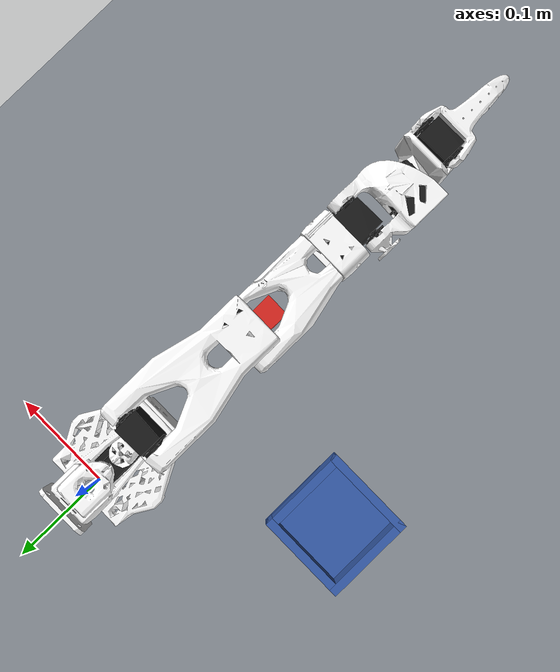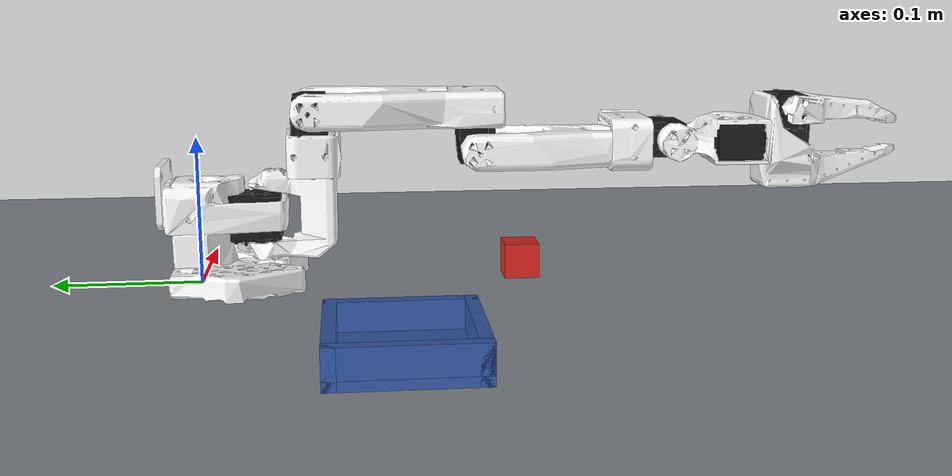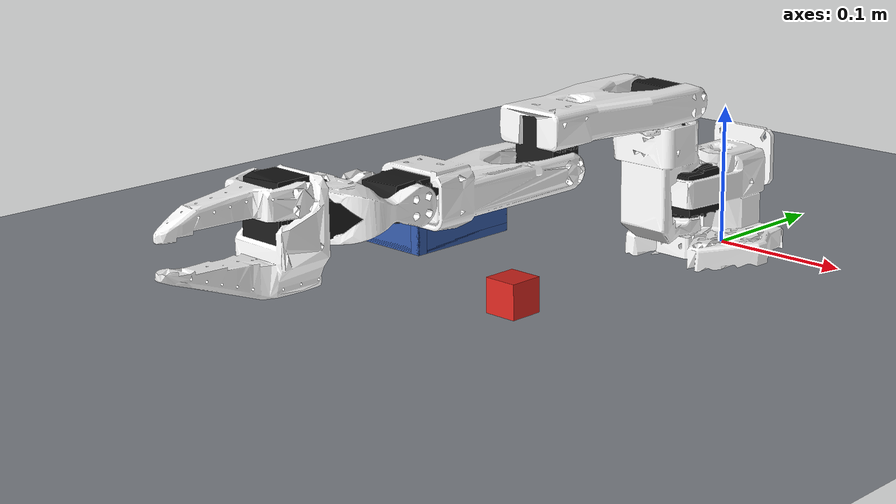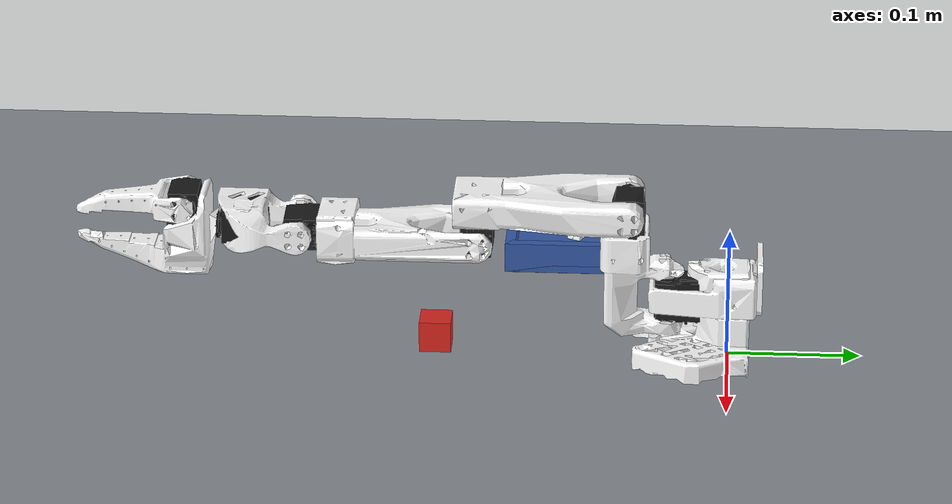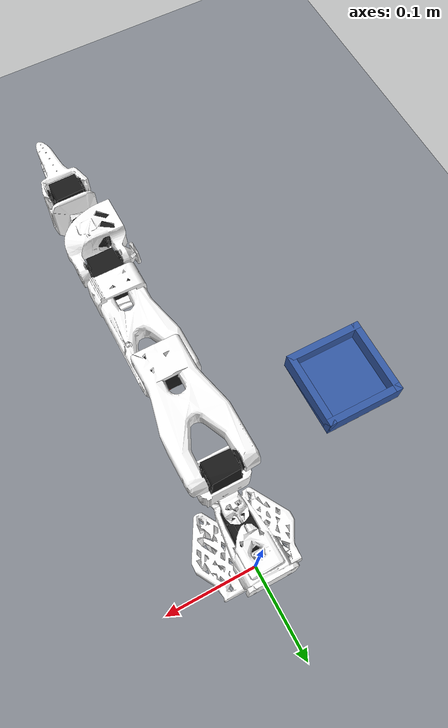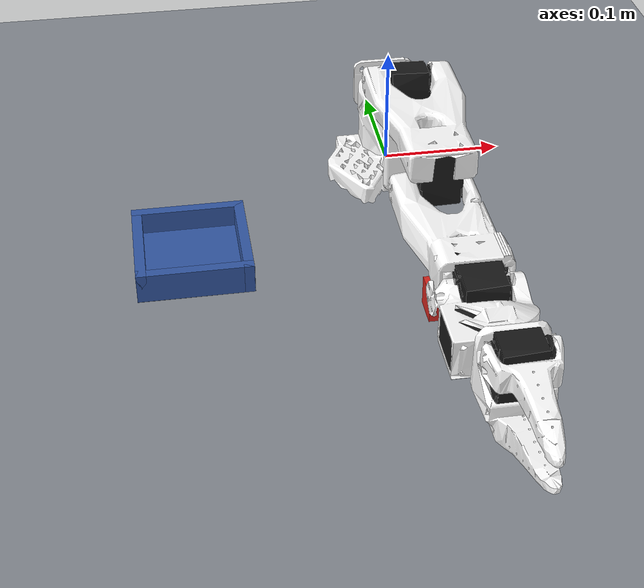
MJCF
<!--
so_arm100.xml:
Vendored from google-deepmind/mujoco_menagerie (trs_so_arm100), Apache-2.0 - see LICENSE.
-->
<mujoco model="sim2cell_pickplace">
  <!-- SO-ARM100 pick-and-place work-cell: arm + block + tray on a worktable.
       Lives next to so_arm100.xml (Menagerie convention) so mesh paths resolve. -->
  <include file="so_arm100.xml"/>

  <visual>
    <headlight diffuse="0.6 0.6 0.6" ambient="0.35 0.35 0.35" specular="0.1 0.1 0.1"/>
    <global offwidth="640" offheight="480"/>
  </visual>

  <asset>
    <texture type="2d" name="worktable" builtin="checker" mark="edge" rgb1="0.55 0.57 0.60" rgb2="0.50 0.52 0.55"
      markrgb="0.4 0.4 0.42" width="300" height="300"/>
    <material name="worktable" texture="worktable" texuniform="true" texrepeat="8 8" reflectance="0.05"/>
    <material name="block_red" rgba="0.85 0.15 0.12 1"/>
    <material name="tray_blue" rgba="0.20 0.35 0.65 1"/>
  </asset>

  <worldbody>
    <light name="toplight" pos="0.3 -0.3 1.2" dir="-0.25 0.25 -1" directional="true" diffuse="0.7 0.7 0.7"/>
    <geom name="floor" size="1 1 0.05" type="plane" material="worktable" friction="0.8 0.005 0.0001"/>

    <!-- Pick object: small cube (freejoint) -->
    <body name="block" pos="0.0 -0.22 0.012">
      <freejoint name="block_free"/>
      <geom name="block_geom" type="box" size="0.012 0.012 0.012" material="block_red" mass="0.02"
        friction="1.2 0.005 0.0001" solimp="2 1 0.01" solref="0.01 1"/>
    </body>

    <!-- Place target: shallow tray -->
    <body name="tray" pos="-0.18 -0.13 0">
      <geom name="tray_floor" type="box" size="0.045 0.045 0.003" pos="0 0 0.003" material="tray_blue"/>
      <geom name="tray_wall_n" type="box" size="0.045 0.004 0.012" pos="0 0.041 0.012" material="tray_blue"/>
      <geom name="tray_wall_s" type="box" size="0.045 0.004 0.012" pos="0 -0.041 0.012" material="tray_blue"/>
      <geom name="tray_wall_e" type="box" size="0.004 0.045 0.012" pos="0.041 0 0.012" material="tray_blue"/>
      <geom name="tray_wall_w" type="box" size="0.004 0.045 0.012" pos="-0.041 0 0.012" material="tray_blue"/>
    </body>

    <!-- Fixed observation camera (front of workspace) -->
    <camera name="front" pos="0.0 -0.55 0.35" xyaxes="1 0 0 0 0.55 0.85" fovy="52"/>
    <!-- Diagnostic overview camera -->
    <camera name="overview" pos="0.6 -0.6 0.5" xyaxes="0.7 0.7 0 -0.4 0.4 0.85" fovy="55"/>
  </worldbody>
</mujoco>

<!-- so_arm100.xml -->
<mujoco model="so_arm100">
  <compiler angle="radian" meshdir="assets/"/>

  <option cone="elliptic" impratio="10"/>

  <asset>
    <material name="white" rgba="1 1 1 1"/>
    <material name="black" rgba="0.1 0.1 0.1 1"/>

    <mesh name="Base" file="Base.stl"/>
    <mesh name="Base_Motor" file="Base_Motor.stl"/>
    <mesh name="Rotation_Pitch" file="Rotation_Pitch.stl"/>
    <mesh name="Rotation_Pitch_Motor" file="Rotation_Pitch_Motor.stl"/>
    <mesh name="Upper_Arm" file="Upper_Arm.stl"/>
    <mesh name="Upper_Arm_Motor" file="Upper_Arm_Motor.stl"/>
    <mesh name="Lower_Arm" file="Lower_Arm.stl"/>
    <mesh name="Lower_Arm_Motor" file="Lower_Arm_Motor.stl"/>
    <mesh name="Wrist_Pitch_Roll" file="Wrist_Pitch_Roll.stl"/>
    <mesh name="Wrist_Pitch_Roll_Motor" file="Wrist_Pitch_Roll_Motor.stl"/>
    <mesh name="Fixed_Jaw" file="Fixed_Jaw.stl"/>
    <mesh name="Fixed_Jaw_Motor" file="Fixed_Jaw_Motor.stl"/>
    <mesh name="Fixed_Jaw_Collision_1" file="Fixed_Jaw_Collision_1.stl"/>
    <mesh name="Fixed_Jaw_Collision_2" file="Fixed_Jaw_Collision_2.stl"/>
    <mesh name="Moving_Jaw" file="Moving_Jaw.stl"/>
    <mesh name="Moving_Jaw_Collision_1" file="Moving_Jaw_Collision_1.stl"/>
    <mesh name="Moving_Jaw_Collision_2" file="Moving_Jaw_Collision_2.stl"/>
    <mesh name="Moving_Jaw_Collision_3" file="Moving_Jaw_Collision_3.stl"/>
  </asset>

  <default>
    <default class="so_arm100">
      <joint frictionloss="0.1" armature="0.1"/>
      <position kp="50" dampratio="1" forcerange="-3.5 3.5"/>
      <default class="Rotation">
        <joint axis="0 1 0" range="-1.92 1.92"/>
      </default>
      <default class="Pitch">
        <joint axis="1 0 0" range="-3.32 0.174"/>
      </default>
      <default class="Elbow">
        <joint axis="1 0 0" range="-0.174 3.14"/>
      </default>
      <default class="Wrist_Pitch">
        <joint axis="1 0 0" range="-1.66 1.66"/>
      </default>
      <default class="Wrist_Roll">
        <joint axis="0 1 0" range="-2.79 2.79"/>
      </default>
      <default class="Jaw">
        <joint axis="0 0 1" range="-0.174 1.75"/>
      </default>
      <default class="visual">
        <geom type="mesh" contype="0" conaffinity="0" density="0" group="2" material="white"/>
        <default class="motor_visual">
          <geom material="black"/>
        </default>
      </default>
      <default class="collision">
        <geom group="3" type="mesh" material="white"/>
        <default class="finger_collision">
          <geom type="box" solimp="2 1 0.01" solref="0.01 1" friction="1 0.005 0.0001"/>
        </default>
      </default>
    </default>
  </default>

  <worldbody>
    <body name="Base" childclass="so_arm100">
      <geom type="mesh" mesh="Base" class="visual"/>
      <geom type="mesh" mesh="Base_Motor" class="motor_visual"/>
      <geom type="mesh" mesh="Base" class="collision"/>
      <body name="Rotation_Pitch" pos="0 -0.0452 0.0165" quat="0.707105 0.707108 0 0">
        <inertial pos="-9.07886e-05 0.0590972 0.031089" quat="0.363978 0.441169 -0.623108 0.533504" mass="0.119226"
          diaginertia="5.94278e-05 5.89975e-05 3.13712e-05"/>
        <joint name="Rotation" class="Rotation"/>
        <geom type="mesh" mesh="Rotation_Pitch" class="visual"/>
        <geom type="mesh" mesh="Rotation_Pitch_Motor" class="motor_visual"/>
        <geom type="mesh" mesh="Rotation_Pitch" class="collision"/>
        <body name="Upper_Arm" pos="0 0.1025 0.0306" euler="1.57079 0 0">
          <inertial pos="-1.72052e-05 0.0701802 0.00310545" quat="0.50104 0.498994 -0.493562 0.50632" mass="0.162409"
            diaginertia="0.000213312 0.000167164 7.01522e-05"/>
          <joint name="Pitch" class="Pitch"/>
          <geom type="mesh" mesh="Upper_Arm" class="visual"/>
          <geom type="mesh" mesh="Upper_Arm_Motor" class="motor_visual"/>
          <geom type="mesh" mesh="Upper_Arm" class="collision"/>
          <body name="Lower_Arm" pos="0 0.11257 0.028" euler="-1.57079 0 0">
            <inertial pos="-0.00339604 0.00137796 0.0768007" quat="0.701995 0.0787996 0.0645626 0.704859"
              mass="0.147968" diaginertia="0.000138803 0.000107748 4.84242e-05"/>
            <joint name="Elbow" class="Elbow"/>
            <geom type="mesh" mesh="Lower_Arm" class="visual"/>
            <geom type="mesh" mesh="Lower_Arm_Motor" class="motor_visual"/>
            <geom type="mesh" mesh="Lower_Arm" class="collision"/>
            <body name="Wrist_Pitch_Roll" pos="0 0.0052 0.1349" euler="-1.57079 0 0">
              <inertial pos="-0.00852653 -0.0352279 -2.34622e-05" quat="-0.0522806 0.705235 0.0549524 0.704905"
                mass="0.0661321" diaginertia="3.45403e-05 2.39041e-05 1.94704e-05"/>
              <joint name="Wrist_Pitch" class="Wrist_Pitch"/>
              <geom type="mesh" mesh="Wrist_Pitch_Roll" class="visual"/>
              <geom type="mesh" mesh="Wrist_Pitch_Roll_Motor" class="motor_visual"/>
              <geom type="mesh" mesh="Wrist_Pitch_Roll" class="collision"/>
              <body name="Fixed_Jaw" pos="0 -0.0601 0" euler="0 1.57079 0">
                <inertial pos="0.00552377 -0.0280167 0.000483583" quat="0.41836 0.620891 -0.350644 0.562599"
                  mass="0.0929859" diaginertia="5.03136e-05 4.64098e-05 2.72961e-05"/>
                <joint name="Wrist_Roll" class="Wrist_Roll"/>
                <geom type="mesh" mesh="Fixed_Jaw" class="visual"/>
                <geom type="mesh" mesh="Fixed_Jaw_Motor" class="motor_visual"/>
                <geom type="mesh" mesh="Fixed_Jaw_Collision_1" class="collision"/>
                <geom type="mesh" mesh="Fixed_Jaw_Collision_2" class="collision"/>
                <geom class="finger_collision" name="fixed_jaw_pad_1" size="0.001 0.005 0.004" pos="0.0089 -0.1014 0"/>
                <geom class="finger_collision" name="fixed_jaw_pad_2" size="0.001 0.005 0.006" pos="0.0109 -0.0914 0"/>
                <geom class="finger_collision" name="fixed_jaw_pad_3" size="0.001 0.01 0.007" pos="0.0126 -0.0768 0"/>
                <geom class="finger_collision" name="fixed_jaw_pad_4" size="0.001 0.01 0.008" pos="0.0143 -0.0572 0"/>
                <site name="tcp" pos="-0.005 -0.08 0" size="0.004" rgba="1 0 0 0.6" group="4"/>
                <camera name="wrist" pos="-0.0050 -0.0050 -0.0449" xyaxes="-1.0000 -0.0000 -0.0008 -0.0007 0.4633 0.8862" fovy="70"/>
                <body name="Moving_Jaw" pos="-0.0202 -0.0244 0" quat="1.34924e-11 -3.67321e-06 1 -3.67321e-06">
                  <inertial pos="-0.00161745 -0.0303473 0.000449646" quat="0.696562 0.716737 -0.0239844 -0.0227026"
                    mass="0.0202444" diaginertia="1.11265e-05 8.99651e-06 2.99548e-06"/>
                  <joint name="Jaw" class="Jaw"/>
                  <geom type="mesh" mesh="Moving_Jaw" class="visual"/>
                  <geom type="mesh" mesh="Moving_Jaw_Collision_1" class="collision"/>
                  <geom type="mesh" mesh="Moving_Jaw_Collision_2" class="collision"/>
                  <geom type="mesh" mesh="Moving_Jaw_Collision_3" class="collision"/>
                  <geom class="finger_collision" name="moving_jaw_pad_1" size="0.001 0.005 0.004"
                    pos="-0.0113 -0.077 0"/>
                  <geom class="finger_collision" name="moving_jaw_pad_2" size="0.001 0.005 0.006"
                    pos="-0.0093 -0.067 0"/>
                  <geom class="finger_collision" name="moving_jaw_pad_3" size="0.001 0.01 0.006"
                    pos="-0.0073 -0.055 0"/>
                  <geom class="finger_collision" name="moving_jaw_pad_4" size="0.001 0.01 0.008"
                    pos="-0.0073 -0.035 0"/>
                </body>
              </body>
            </body>
          </body>
        </body>
      </body>
    </body>
  </worldbody>

  <actuator>
    <position class="Rotation" name="Rotation" joint="Rotation" inheritrange="1"/>
    <position class="Pitch" name="Pitch" joint="Pitch" inheritrange="1"/>
    <position class="Elbow" name="Elbow" joint="Elbow" inheritrange="1"/>
    <position class="Wrist_Pitch" name="Wrist_Pitch" joint="Wrist_Pitch" inheritrange="1"/>
    <position class="Wrist_Roll" name="Wrist_Roll" joint="Wrist_Roll" inheritrange="1"/>
    <position class="Jaw" name="Jaw" joint="Jaw" inheritrange="1"/>
  </actuator>

  <contact>
    <exclude body1="Base" body2="Rotation_Pitch"/>
  </contact>

  <keyframe>
    <key name="home" qpos="0 -1.57 1.57 1.57 -1.57 0" ctrl="0 -1.57 1.57 1.57 -1.57 0"/>
    <key name="rest" qpos="0 -3.32 3.11 1.18 0 -0.174" ctrl="0 -3.32 3.11 1.18 0 -0.174"/>
  </keyframe>
</mujoco>
